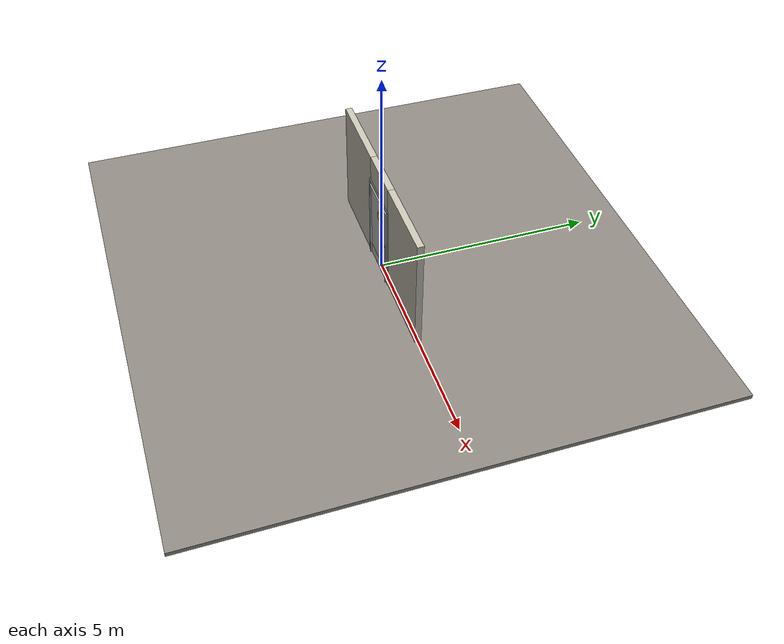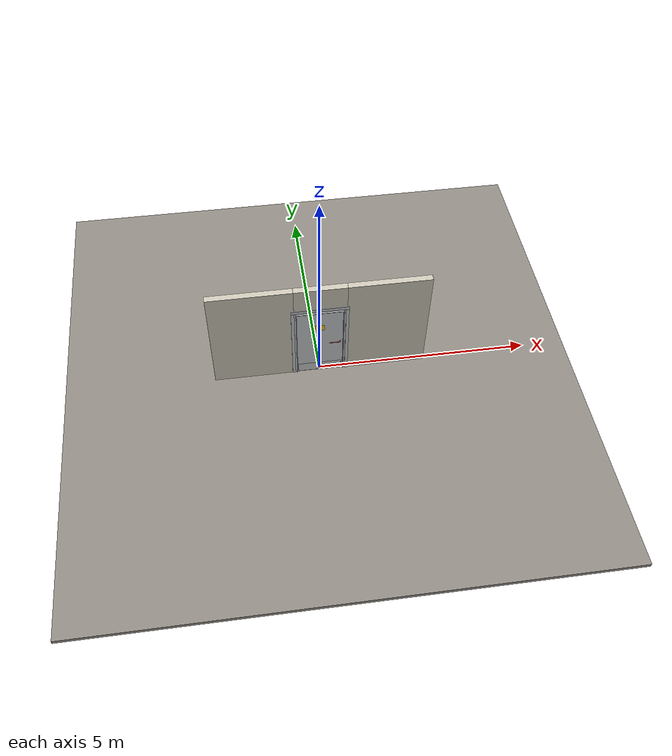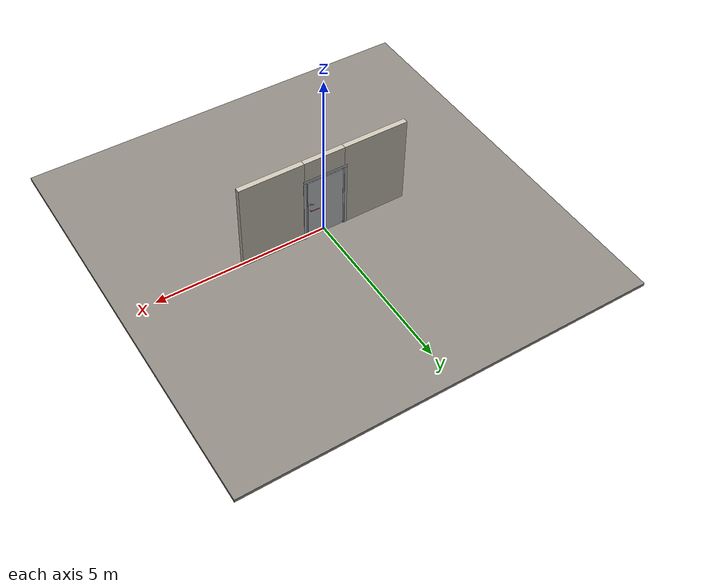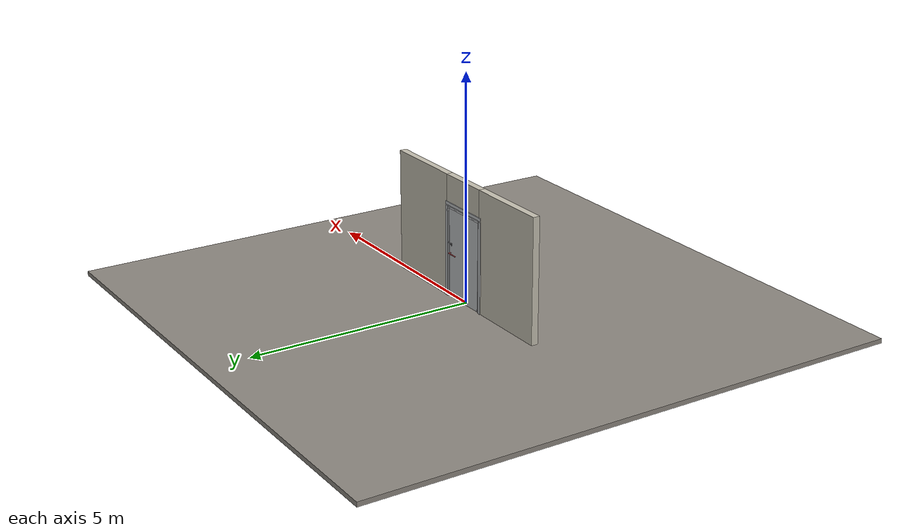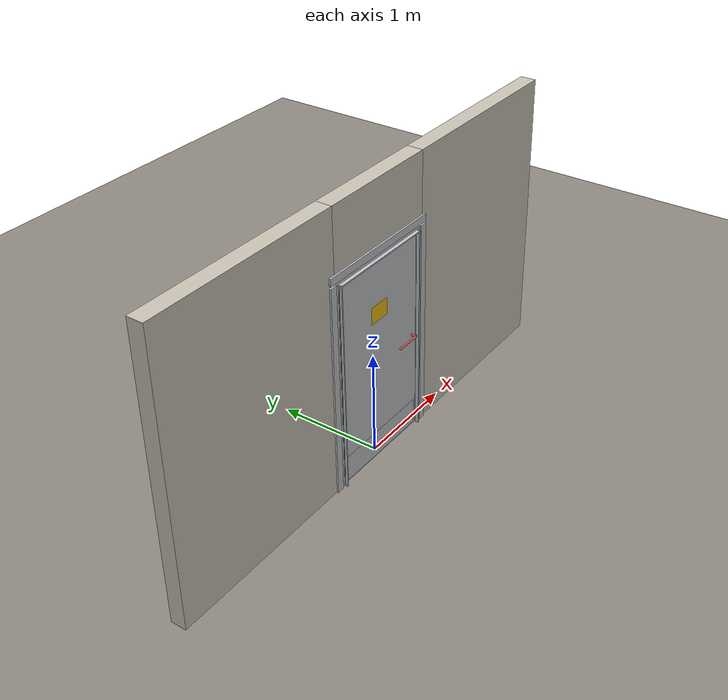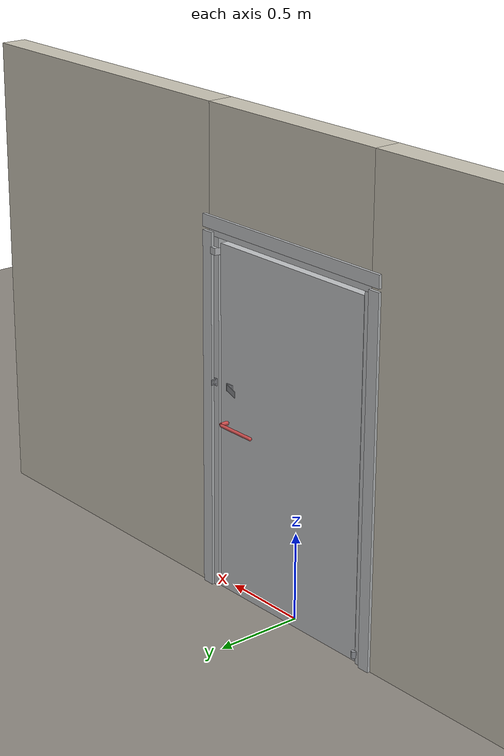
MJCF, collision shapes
<?xml version="1.0" ?>
<mujoco model="db0469_cold_storage_full">
  <compiler angle="radian" meshdir="../../hardware" texturedir="../../textures" autolimits="true" inertiafromgeom="false"/>
  <option timestep="0.002" integrator="implicitfast" cone="elliptic" impratio="10" noslip_iterations="3">
    <flag multiccd="enable"/>
  </option>
  <size memory="16M"/>
  <default>
    <geom condim="4" solref="0.005 1" solimp="0.95 0.99 0.001"/>
    <joint solreflimit="0.005 1" solimplimit="0.95 0.99 0.001"/>
    <tendon solreflimit="0.005 1"/>
    <equality solref="0.002 1"/>
  </default>
  <visual>
    <headlight ambient="0.4 0.4 0.4" diffuse="0.7 0.7 0.7" specular="0.2 0.2 0.2"/>
    <quality shadowsize="4096"/>
    <map znear="0.01" zfar="60"/>
  </visual>
  <asset>
    <mesh name="hinge_05d9a38dfa" file="hinge_05d9a38dfa.obj"/>
    <mesh name="hinge_jamb_953fb56768" file="hinge_jamb_953fb56768.obj"/>
    <mesh name="lever_40740b93f7" file="lever_40740b93f7.obj"/>
    <material name="mat_floor" rgba="0.55 0.53 0.5 1" specular="0.2" shininess="0.15" reflectance="0"/>
    <material name="mat_wall" rgba="0.78 0.76 0.7 1" specular="0.2" shininess="0.1" reflectance="0"/>
    <material name="mat_hinge" rgba="0.55 0.56 0.58 1" specular="0.8" shininess="0.55" reflectance="0.4"/>
    <material name="mat_leaf" rgba="0.75 0.76 0.77 1" specular="0.8" shininess="0.65" reflectance="0.4"/>
    <material name="mat_op_chrome" rgba="0.9 0.9 0.92 1" specular="0.8" shininess="0.9" reflectance="0.4"/>
    <material name="mat_trim" rgba="0.85 0.66 0.3 1" specular="0.8" shininess="0.75" reflectance="0.4"/>
    <material name="mat_bolt" rgba="0.75 0.76 0.77 1" specular="0.8" shininess="0.65" reflectance="0.4"/>
    <material name="mat_op_steel_galvanized" rgba="0.65 0.66 0.68 1" specular="0.74" shininess="0.5" reflectance="0.36"/>
    <material name="mat_padlock" rgba="0.85 0.66 0.3 1" specular="0.8" shininess="0.75" reflectance="0.4"/>
    <material name="mat_frame" rgba="0.75 0.76 0.77 1" specular="0.8" shininess="0.65" reflectance="0.4"/>
    <material name="mat_seal" rgba="0.1 0.1 0.1 1" specular="0.2" shininess="0.1" reflectance="0"/>
    <material name="mat_kick" rgba="0.75 0.76 0.77 1" specular="0.8" shininess="0.65" reflectance="0.4"/>
    <material name="mat_placard" rgba="0.95 0.75 0.05 1" specular="0.2" shininess="0.5" reflectance="0"/>
    <texture name="skybox" type="skybox" builtin="gradient" rgb1="0.6 0.7 0.85" rgb2="0.9 0.92 0.95" width="256" height="256"/>
  </asset>
  <worldbody>
    <light name="sun" pos="1.5 -2.5 4" dir="-0.3 0.5 -0.8" directional="true" diffuse="0.8 0.8 0.8" specular="0.3 0.3 0.3" castshadow="true"/>
    <light name="fill" pos="-1.5 2.5 3" dir="0.3 -0.5 -0.7" directional="true" diffuse="0.35 0.35 0.4" castshadow="false"/>
    <camera name="robot_view" pos="0 -2.5 1.7" xyaxes="1 0 0 0 0.26963 0.962964" fovy="52"/>
    <camera name="far_view" pos="0 2.5 1.7" xyaxes="-1 0 0 0 -0.26963 0.962964" fovy="52"/>
    <camera name="iso" pos="1.9 -2.1 2.1" xyaxes="0.741536 0.670913 0 -0.242917 0.268487 0.932151" fovy="46"/>
    <camera name="detail_handle" pos="0.443 -0.93 1.28" xyaxes="0.97561 0.219512 0 -0.070934 0.315262 0.94635" fovy="38"/>
    <geom name="floor" type="box" size="6 6 0.05" pos="0 0 -0.05" material="mat_floor" group="0" contype="1" conaffinity="1" friction="0.8 0.005 0.0001" density="2400"/>
    <geom name="wall_left" type="box" size="0.955 0.075 1.35" pos="-1.545 0 1.35" material="mat_wall" group="0" contype="1" conaffinity="1" friction="0.6 0.005 0.0001" density="800"/>
    <geom name="wall_right" type="box" size="0.94 0.075 1.35" pos="1.56 0 1.35" material="mat_wall" group="0" contype="1" conaffinity="1" friction="0.6 0.005 0.0001" density="800"/>
    <geom name="wall_header" type="box" size="0.605 0.075 0.3125" pos="0.015 0 2.3875" material="mat_wall" group="0" contype="1" conaffinity="1" friction="0.6 0.005 0.0001" density="800"/>
    <geom name="hinge_0_jamb" type="mesh" mesh="hinge_jamb_953fb56768" pos="-0.542 0.082 0.262" quat="0 1 0 0" material="mat_hinge" group="1" contype="0" conaffinity="0" density="7850"/>
    <geom name="hinge_1_jamb" type="mesh" mesh="hinge_jamb_953fb56768" pos="-0.542 0.082 1.7964" quat="0 1 0 0" material="mat_hinge" group="1" contype="0" conaffinity="0" density="7850"/>
    <geom name="leaf_staple_leg_n" type="box" size="0.003 0.0025 0.014" pos="0.572 0.089 1.2125" quat="0.707107 -0.707107 0 0" material="mat_op_steel_galvanized" group="0" contype="1" conaffinity="1" friction="0.6 0.005 0.0001" density="7800"/>
    <geom name="leaf_staple_leg_p" type="box" size="0.003 0.0025 0.014" pos="0.572 0.089 1.1875" quat="0.707107 -0.707107 0 0" material="mat_op_steel_galvanized" group="0" contype="1" conaffinity="1" friction="0.6 0.005 0.0001" density="7800"/>
    <geom name="leaf_staple_bridge" type="box" size="0.003 0.015 0.0025" pos="0.572 0.1005 1.2" quat="0.707107 -0.707107 0 0" material="mat_op_steel_galvanized" group="0" contype="1" conaffinity="1" friction="0.6 0.005 0.0001" density="7800"/>
    <geom name="leaf_staple_base" type="box" size="0.016 0.021 0.001" pos="0.572 0.076 1.2" quat="0.707107 -0.707107 0 0" material="mat_op_steel_galvanized" group="1" contype="0" conaffinity="0" density="7800"/>
    <geom name="jamb_hinge" type="box" size="0.0225 0.075 1" pos="-0.5675 0 1" material="mat_frame" group="0" contype="1" conaffinity="1" friction="0.6 0.005 0.0001" density="300"/>
    <geom name="strike_1926_wall_n" type="box" size="0.0375 0.03375 0.019" pos="0.5825 -0.04125 1.9264" material="mat_frame" group="0" contype="1" conaffinity="1" friction="0.6 0.005 0.0001" density="300"/>
    <geom name="strike_1926_wall_p" type="box" size="0.0375 0.008 0.019" pos="0.5825 0.0155 1.9264" material="mat_frame" group="0" contype="1" conaffinity="1" friction="0.6 0.005 0.0001" density="300"/>
    <geom name="strike_1926_ramp" type="box" size="0.0375 0.035921 0.019" pos="0.585822 0.055596 1.9264" quat="0.99881 0 0 -0.048776" material="mat_frame" group="0" contype="1" conaffinity="1" friction="0.12 0.005 0.0001" density="300"/>
    <geom name="strike_1926_ramp_n" type="box" size="0.0375 0.035921 0.019" pos="0.585822 -0.043596 1.9264" quat="0.99881 0 0 0.048776" material="mat_frame" group="0" contype="1" conaffinity="1" friction="0.12 0.005 0.0001" density="300"/>
    <geom name="strike_1926_back" type="box" size="0.0325 0.0075 0.019" pos="0.5875 0 1.9264" material="mat_frame" group="0" contype="1" conaffinity="1" friction="0.6 0.005 0.0001" density="300"/>
    <geom name="jamb_strike_0" type="box" size="0.0375 0.075 0.9537" pos="0.5825 0 0.9537" material="mat_frame" group="0" contype="1" conaffinity="1" friction="0.6 0.005 0.0001" density="300"/>
    <geom name="jamb_strike_1" type="box" size="0.0375 0.075 0.0273" pos="0.5825 0 1.9727" material="mat_frame" group="0" contype="1" conaffinity="1" friction="0.6 0.005 0.0001" density="300"/>
    <geom name="jamb_head" type="box" size="0.605 0.075 0.0225" pos="0.015 0 2.0225" material="mat_frame" group="0" contype="1" conaffinity="1" friction="0.6 0.005 0.0001" density="300"/>
    <geom name="head_stud" type="box" size="0.605 0.075 0.015" pos="0.015 0 2.06" material="mat_wall" group="0" contype="1" conaffinity="1" friction="0.6 0.005 0.0001" density="500"/>
    <geom name="stop_hinge" type="box" size="0.0055 0.016 1" pos="-0.5395 -0.0915 1" material="mat_frame" group="0" contype="1" conaffinity="1" friction="0.6 0.005 0.0001" density="300"/>
    <geom name="stop_strike" type="box" size="0.0055 0.016 1" pos="0.5395 -0.0915 1" material="mat_frame" group="0" contype="1" conaffinity="1" friction="0.6 0.005 0.0001" density="300"/>
    <geom name="stop_head" type="box" size="0.545 0.016 0.0055" pos="0 -0.0915 1.9945" material="mat_frame" group="0" contype="1" conaffinity="1" friction="0.6 0.005 0.0001" density="300"/>
    <geom name="seal_hinge" type="box" size="0.004 0.005 1" pos="-0.542 -0.08 1" material="mat_seal" group="1" contype="0" conaffinity="0" density="1100"/>
    <geom name="seal_strike" type="box" size="0.004 0.005 1" pos="0.542 -0.08 1" material="mat_seal" group="1" contype="0" conaffinity="0" density="1100"/>
    <geom name="seal_head" type="box" size="0.525 0.005 0.008" pos="0 -0.08 1.988" material="mat_seal" group="1" contype="0" conaffinity="0" density="1100"/>
    <geom name="casing_l_n" type="box" size="0.035 0.008 1.0225" pos="-0.62 -0.083 1" material="mat_frame" group="2" contype="0" conaffinity="0" density="300"/>
    <geom name="casing_r_n" type="box" size="0.035 0.008 1.0225" pos="0.62 -0.083 1" material="mat_frame" group="2" contype="0" conaffinity="0" density="300"/>
    <geom name="casing_h_n" type="box" size="0.655 0.008 0.035" pos="0 -0.083 2.075" material="mat_frame" group="2" contype="0" conaffinity="0" density="300"/>
    <geom name="casing_l_p" type="box" size="0.035 0.008 1.0225" pos="-0.62 0.083 1" material="mat_frame" group="2" contype="0" conaffinity="0" density="300"/>
    <geom name="casing_r_p" type="box" size="0.035 0.008 1.0225" pos="0.62 0.083 1" material="mat_frame" group="2" contype="0" conaffinity="0" density="300"/>
    <geom name="casing_h_p" type="box" size="0.655 0.008 0.035" pos="0 0.083 2.075" material="mat_frame" group="2" contype="0" conaffinity="0" density="300"/>
    <site name="approach_point" pos="0 -1.5 0" quat="1 0 0 0" size="0.05" rgba="0.2 0.9 0.2 0.5" group="4"/>
    <site name="goal_point" pos="0 1.5 0" quat="1 0 0 0" size="0.05" rgba="0.2 0.9 0.2 0.5" group="4"/>
    <site name="door_plane_center" pos="0 0 1" quat="1 0 0 0" size="0.02" rgba="0.2 0.9 0.2 0.5" group="4"/>
    <body name="leaf_riser" pos="-0.545 0 0">
      <inertial pos="0.003 0.082 0.055" mass="0.174012" quat="0.707107 0 0.707107 0" diaginertia="0.000017053 0.00002732 0.00002732"/>
      <joint name="leaf_rise" type="slide" axis="0 0 1" limited="true" range="0 0.0264" damping="1" armature="0.5"/>
      <geom name="leaf_riser_marker" type="cylinder" size="0.014 0.018" pos="0.003 0.082 0.055" material="mat_hinge" group="1" contype="0" conaffinity="0" density="7850"/>
      <body name="leaf" pos="0 0 0">
        <inertial pos="0.52339 -0.001721 0.952311" mass="58.810554" quat="0.504329 0.493798 -0.501375 0.500438" diaginertia="6.025882717 20.600833855 26.373174083"/>
        <joint name="leaf_hinge" type="hinge" axis="0 0 1" pos="0.003 0.082 0" limited="true" range="0 1.570796" solreflimit="0.02 1" damping="0.518725" frictionloss="5.823855" armature="0.02"/>
        <geom name="leaf_slab" type="box" size="0.535 0.075 0.9822" pos="0.538 0 0.9942" material="mat_leaf" group="0" contype="1" conaffinity="1" friction="0.35 0.005 0.0001" density="1"/>
        <geom name="hinge_0" type="mesh" mesh="hinge_05d9a38dfa" pos="0.003 0.082 0.262" quat="0 1 0 0" material="mat_hinge" group="1" contype="0" conaffinity="0" density="7850"/>
        <geom name="hinge_1" type="mesh" mesh="hinge_05d9a38dfa" pos="0.003 0.082 1.7964" quat="0 1 0 0" material="mat_hinge" group="1" contype="0" conaffinity="0" density="7850"/>
        <geom name="leaf_mag_catch_faceplate" type="box" size="0.0006 0.012 0.029" pos="1.0724 0 1.9264" material="mat_bolt" group="1" contype="0" conaffinity="0" density="8500"/>
        <geom name="leaf_hasp_plate" type="box" size="0.024 0.0215 0.003" pos="0.998 0.078 1.2" quat="0.707107 -0.707107 0 0" material="mat_op_steel_galvanized" group="1" contype="0" conaffinity="0" density="7800"/>
        <geom name="kick_plate_n" type="box" size="0.505 0.0008 0.125" pos="0.538 -0.0758 0.147" material="mat_kick" group="2" contype="0" conaffinity="0" density="7900"/>
        <geom name="warning_placard" type="box" size="0.11 0.001 0.08" pos="0.538 -0.076 1.4853" material="mat_placard" group="2" contype="0" conaffinity="0" density="1000"/>
        <site name="leaf_edge_mid" pos="1.073 0 0.9822" quat="1 0 0 0" size="0.02" rgba="0.2 0.9 0.2 0.5" group="4"/>
        <body name="leaf_handle" pos="1.008 0 1">
          <inertial pos="-0.045692 0 0" mass="3.018013" quat="0 0.707107 0.707107 0" diaginertia="0.018502196 0.037998454 0.05452992"/>
          <joint name="leaf_handle_hinge" type="hinge" axis="0 -1 0" limited="true" range="0 0.5" damping="0.58994" frictionloss="0.07" stiffness="2.5" springref="-0.96" armature="0.01"/>
          <geom name="leaf_handle_spindle" type="cylinder" size="0.006 0.075" pos="0 0 0" quat="0.707107 -0.707107 0 0" material="mat_op_chrome" group="1" contype="0" conaffinity="0" density="7850"/>
          <geom name="leaf_handle_lever_n" type="mesh" mesh="lever_40740b93f7" pos="0 -0.075 0" quat="0.707107 0.707107 0 0" material="mat_op_chrome" group="1" contype="0" conaffinity="0" density="3000"/>
          <geom name="leaf_handle_lever_col_n" type="capsule" size="0.0095 0.1155" pos="-0.125 -0.13 0" quat="0.707107 0 -0.707107 0" material="mat_op_chrome" group="3" contype="1" conaffinity="1" rgba="0.8 0.3 0.3 0.25" friction="0.7 0.01 0.0001" density="3000"/>
          <geom name="leaf_handle_hub_col_n" type="cylinder" size="0.012 0.022" pos="0 -0.105 0" quat="0.707107 -0.707107 0 0" material="mat_op_chrome" group="3" contype="1" conaffinity="1" rgba="0.8 0.3 0.3 0.25" friction="0.6 0.005 0.0001" density="3000"/>
          <geom name="leaf_handle_lever_p" type="mesh" mesh="lever_40740b93f7" pos="0 0.075 0" quat="-0.707107 0.707107 0 0" material="mat_op_chrome" group="1" contype="0" conaffinity="0" density="3000"/>
          <geom name="leaf_handle_lever_col_p" type="capsule" size="0.0095 0.1155" pos="-0.125 0.13 0" quat="0.707107 0 -0.707107 0" material="mat_op_chrome" group="3" contype="1" conaffinity="1" rgba="0.8 0.3 0.3 0.25" friction="0.7 0.01 0.0001" density="3000"/>
          <geom name="leaf_handle_hub_col_p" type="cylinder" size="0.012 0.022" pos="0 0.105 0" quat="0.707107 -0.707107 0 0" material="mat_op_chrome" group="3" contype="1" conaffinity="1" rgba="0.8 0.3 0.3 0.25" friction="0.6 0.005 0.0001" density="3000"/>
          <site name="leaf_handle_grip_n" pos="-0.2 -0.13 0" quat="1 0 0 0" size="0.012" rgba="0.2 0.9 0.2 0.5" group="4"/>
          <site name="leaf_handle_grip_p" pos="-0.2 0.13 0" quat="1 0 0 0" size="0.012" rgba="0.2 0.9 0.2 0.5" group="4"/>
        </body>
        <body name="leaf_mag_catch" pos="1.073 0 1.9264">
          <inertial pos="-0.012 0 0" mass="0.030762" quat="0 0 0.707107 0.707107" diaginertia="0.000000526 0.000002949 0.000002949"/>
          <joint name="leaf_mag_catch_slide" type="slide" axis="-1 0 0" limited="true" range="0 0.006" damping="2" frictionloss="0.3" stiffness="20000" springref="-0.006" armature="0.1"/>
          <geom name="leaf_mag_catch_capsule" type="capsule" size="0.006 0.012" pos="-0.012 0 0" quat="0.707107 0 0.707107 0" material="mat_bolt" group="0" contype="1" conaffinity="1" friction="0.2 0.005 0.0001" density="8500"/>
        </body>
        <body name="leaf_hasp" pos="1.018 0.081 1.2">
          <inertial pos="-0.047504 0.014824 0" mass="0.120573" quat="0.695935 -0.695935 0.125199 -0.125199" diaginertia="0.00001368 0.000185913 0.000199083"/>
          <joint name="leaf_hasp_hinge" type="hinge" axis="0 0 1" limited="true" range="0 2.9" damping="0.02" frictionloss="0.05" armature="0.005" ref="2.8"/>
          <geom name="leaf_hasp_strap" type="box" size="0.0605 0.0175 0.0015" pos="-0.057507 0.018853 0" quat="0.120185 -0.120185 -0.696818 0.696818" material="mat_op_steel_galvanized" group="0" contype="1" conaffinity="1" friction="0.6 0.005 0.0001" density="7800"/>
          <geom name="leaf_hasp_knuckle" type="cylinder" size="0.0045 0.0215" pos="-0.00134 -0.003769 0" quat="0.169967 0 0 0.98545" material="mat_op_steel_galvanized" group="1" contype="0" conaffinity="0" density="7850"/>
          <site name="leaf_hasp_grip" pos="-0.098514 0.024412 0" quat="0.169967 0 0 0.98545" size="0.01" rgba="0.2 0.9 0.2 0.5" group="4"/>
        </body>
      </body>
    </body>
  </worldbody>
  <equality>
    <joint name="leaf_rise_couple" joint1="leaf_rise" joint2="leaf_hinge" polycoef="0 0.007639 0 0 0" active="true"/>
  </equality>
  <sensor>
    <jointpos name="leaf_hinge_pos" joint="leaf_hinge"/>
    <jointvel name="leaf_hinge_vel" joint="leaf_hinge"/>
    <jointpos name="leaf_handle_hinge_pos" joint="leaf_handle_hinge"/>
    <jointvel name="leaf_handle_hinge_vel" joint="leaf_handle_hinge"/>
    <jointpos name="leaf_mag_catch_slide_pos" joint="leaf_mag_catch_slide"/>
    <jointvel name="leaf_mag_catch_slide_vel" joint="leaf_mag_catch_slide"/>
    <jointpos name="leaf_hasp_hinge_pos" joint="leaf_hasp_hinge"/>
    <jointvel name="leaf_hasp_hinge_vel" joint="leaf_hasp_hinge"/>
  </sensor>
</mujoco>
